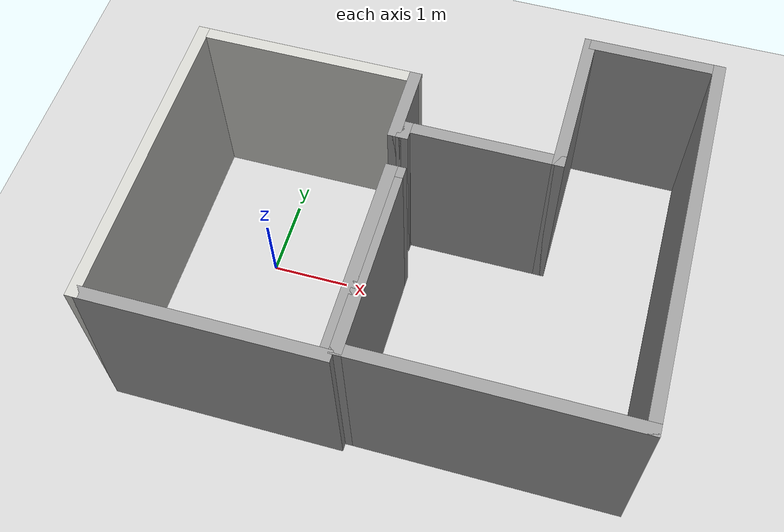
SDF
<sdf version="1.7">
 <world name="default">
  <light name="sun" type="directional">
   <pose>0 0 10 0 -0 0</pose>
   <diffuse>0.8 0.8 0.8 1</diffuse>
   <specular>0.2 0.2 0.2 1</specular>
   <attenuation>
    <range>1000</range>
    <constant>0.9</constant>
    <linear>0.01</linear>
    <quadratic>0.001</quadratic>
   </attenuation>
   <direction>-0.5 0.1 -0.9</direction>
   <spot><inner_angle>0</inner_angle><outer_angle>0</outer_angle><falloff>0</falloff></spot>
  </light>
  <model name="ground_plane">
   <static>1</static>
   <link name="link">
    <collision name="collision">
     <geometry><plane><normal>0 0 1</normal><size>100 100</size></plane></geometry>
     <surface>
      <contact><collide_bitmask>65535</collide_bitmask></contact>
      <friction><ode><mu>100</mu><mu2>50</mu2></ode></friction>
     </surface>
    </collision>
    <visual name="visual">
     <cast_shadows>0</cast_shadows>
     <geometry><plane><normal>0 0 1</normal><size>100 100</size></plane></geometry>
     <material>
      <script><uri>file://media/materials/scripts/gazebo.material</uri><name>Gazebo/Grey</name></script>
     </material>
    </visual>
   </link>
  </model>
  <gravity>0 0 -9.8</gravity>
  <magnetic_field>6e-06 2.3e-05 -4.2e-05</magnetic_field>
  <atmosphere type="adiabatic"/>
  <physics type="ode">
   <max_step_size>0.001</max_step_size>
   <real_time_factor>1</real_time_factor>
   <real_time_update_rate>1000</real_time_update_rate>
  </physics>
  <scene><ambient>0.4 0.4 0.4 1</ambient><background>0.7 0.7 0.7 1</background><shadows>1</shadows></scene>
  <spherical_coordinates>
   <surface_model>EARTH_WGS84</surface_model>
   <latitude_deg>0</latitude_deg>
   <longitude_deg>0</longitude_deg>
   <elevation>0</elevation>
   <heading_deg>0</heading_deg>
  </spherical_coordinates>
  <model name="myworld">
   <pose>1.87893 0.296176 0 0 -0 0</pose>
   <link name="Wall_21">
    <collision name="Wall_21_Collision">
     <geometry><box><size>2.75 0.15 2.5</size></box></geometry>
     <pose>0 0 1.25 0 -0 0</pose>
    </collision>
    <visual name="Wall_21_Visual">
     <pose>0 0 1.25 0 -0 0</pose>
     <geometry><box><size>2.75 0.15 2.5</size></box></geometry>
     <material>
      <script><uri>file://media/materials/scripts/gazebo.material</uri><name>Gazebo/CeilingTiled</name></script>
      <ambient>1 1 1 1</ambient>
     </material>
     <meta><layer>0</layer></meta>
    </visual>
    <pose>-1.70322 1.37477 0 0 -0 0</pose>
   </link>
   <link name="Wall_22">
    <collision name="Wall_22_Collision">
     <geometry><box><size>1 0.15 2.5</size></box></geometry>
     <pose>0 0 1.25 0 -0 0</pose>
    </collision>
    <visual name="Wall_22_Visual">
     <pose>0 0 1.25 0 -0 0</pose>
     <geometry><box><size>1 0.15 2.5</size></box></geometry>
     <material>
      <script><uri>file://media/materials/scripts/gazebo.material</uri><name>Gazebo/Grey</name></script>
      <ambient>1 1 1 1</ambient>
     </material>
     <meta><layer>0</layer></meta>
    </visual>
    <pose>-0.403224 0.94977 0 0 -0 -1.5708</pose>
   </link>
   <link name="Wall_23">
    <collision name="Wall_23_Collision">
     <geometry><box><size>0.25 0.15 2.5</size></box></geometry>
     <pose>0 0 1.25 0 -0 0</pose>
    </collision>
    <visual name="Wall_23_Visual">
     <pose>0 0 1.25 0 -0 0</pose>
     <geometry><box><size>0.25 0.15 2.5</size></box></geometry>
     <material>
      <script><uri>file://media/materials/scripts/gazebo.material</uri><name>Gazebo/Grey</name></script>
      <ambient>1 1 1 1</ambient>
     </material>
     <meta><layer>0</layer></meta>
    </visual>
    <pose>-0.353224 0.52477 0 0 -0 0</pose>
   </link>
   <link name="Wall_24">
    <collision name="Wall_24_Collision">
     <geometry><box><size>0.25 0.15 2.5</size></box></geometry>
     <pose>0 0 1.25 0 -0 0</pose>
    </collision>
    <visual name="Wall_24_Visual">
     <pose>0 0 1.25 0 -0 0</pose>
     <geometry><box><size>0.25 0.15 2.5</size></box></geometry>
     <material>
      <script><uri>file://media/materials/scripts/gazebo.material</uri><name>Gazebo/Grey</name></script>
      <ambient>1 1 1 1</ambient>
     </material>
     <meta><layer>0</layer></meta>
    </visual>
    <pose>-0.303224 0.57477 0 0 -0 1.5708</pose>
   </link>
   <link name="Wall_25">
    <collision name="Wall_25_Collision">
     <geometry><box><size>2 0.15 2.5</size></box></geometry>
     <pose>0 0 1.25 0 -0 0</pose>
    </collision>
    <visual name="Wall_25_Visual">
     <pose>0 0 1.25 0 -0 0</pose>
     <geometry><box><size>2 0.15 2.5</size></box></geometry>
     <material>
      <script><uri>file://media/materials/scripts/gazebo.material</uri><name>Gazebo/Grey</name></script>
      <ambient>1 1 1 1</ambient>
     </material>
     <meta><layer>0</layer></meta>
    </visual>
    <pose>0.621776 0.62477 0 0 -0 0</pose>
   </link>
   <link name="Wall_26">
    <collision name="Wall_26_Collision">
     <geometry><box><size>2 0.15 2.5</size></box></geometry>
     <pose>0 0 1.25 0 -0 0</pose>
    </collision>
    <visual name="Wall_26_Visual">
     <pose>0 0 1.25 0 -0 0</pose>
     <geometry><box><size>2 0.15 2.5</size></box></geometry>
     <material>
      <script><uri>file://media/materials/scripts/gazebo.material</uri><name>Gazebo/Grey</name></script>
      <ambient>1 1 1 1</ambient>
     </material>
     <meta><layer>0</layer></meta>
    </visual>
    <pose>1.54678 1.54977 0 0 -0 1.5708</pose>
   </link>
   <link name="Wall_27">
    <collision name="Wall_27_Collision">
     <geometry><box><size>1.75 0.15 2.5</size></box></geometry>
     <pose>0 0 1.25 0 -0 0</pose>
    </collision>
    <visual name="Wall_27_Visual">
     <pose>0 0 1.25 0 -0 0</pose>
     <geometry><box><size>1.75 0.15 2.5</size></box></geometry>
     <material>
      <script><uri>file://media/materials/scripts/gazebo.material</uri><name>Gazebo/Grey</name></script>
      <ambient>1 1 1 1</ambient>
     </material>
     <meta><layer>0</layer></meta>
    </visual>
    <pose>2.34678 2.47477 0 0 -0 0</pose>
   </link>
   <link name="Wall_30">
    <collision name="Wall_30_Collision">
     <geometry><box><size>5 0.15 2.5</size></box></geometry>
     <pose>0 0 1.25 0 -0 0</pose>
    </collision>
    <visual name="Wall_30_Visual">
     <pose>0 0 1.25 0 -0 0</pose>
     <geometry><box><size>5 0.15 2.5</size></box></geometry>
     <material>
      <script><uri>file://media/materials/scripts/gazebo.material</uri><name>Gazebo/Grey</name></script>
      <ambient>1 1 1 1</ambient>
     </material>
     <meta><layer>0</layer></meta>
    </visual>
    <pose>3.14678 0.04977 0 0 -0 -1.5708</pose>
   </link>
   <link name="Wall_31">
    <collision name="Wall_31_Collision">
     <geometry><box><size>3.5 0.15 2.5</size></box></geometry>
     <pose>0 0 1.25 0 -0 0</pose>
    </collision>
    <visual name="Wall_31_Visual">
     <pose>0 0 1.25 0 -0 0</pose>
     <geometry><box><size>3.5 0.15 2.5</size></box></geometry>
     <material>
      <script><uri>file://media/materials/scripts/gazebo.material</uri><name>Gazebo/Grey</name></script>
      <ambient>1 1 1 1</ambient>
     </material>
     <meta><layer>0</layer></meta>
    </visual>
    <pose>1.47178 -2.37523 0 0 -0 3.14159</pose>
   </link>
   <link name="Wall_32">
    <collision name="Wall_32_Collision">
     <geometry><box><size>2.5 0.15 2.5</size></box></geometry>
     <pose>0 0 1.25 0 -0 0</pose>
    </collision>
    <visual name="Wall_32_Visual">
     <pose>0 0 1.25 0 -0 0</pose>
     <geometry><box><size>2.5 0.15 2.5</size></box></geometry>
     <material>
      <script><uri>file://media/materials/scripts/gazebo.material</uri><name>Gazebo/Grey</name></script>
      <ambient>1 1 1 1</ambient>
     </material>
     <meta><layer>0</layer></meta>
    </visual>
    <pose>-0.203224 -1.20023 0 0 -0 1.5708</pose>
   </link>
   <link name="Wall_33">
    <collision name="Wall_33_Collision">
     <geometry><box><size>0.25 0.15 2.5</size></box></geometry>
     <pose>0 0 1.25 0 -0 0</pose>
    </collision>
    <visual name="Wall_33_Visual">
     <pose>0 0 1.25 0 -0 0</pose>
     <geometry><box><size>0.25 0.15 2.5</size></box></geometry>
     <material>
      <script><uri>file://media/materials/scripts/gazebo.material</uri><name>Gazebo/Grey</name></script>
      <ambient>1 1 1 1</ambient>
     </material>
     <meta><layer>0</layer></meta>
    </visual>
    <pose>-0.253224 -0.02523 0 0 -0 3.14159</pose>
   </link>
   <link name="Wall_34">
    <collision name="Wall_34_Collision">
     <geometry><box><size>2.5 0.15 2.5</size></box></geometry>
     <pose>0 0 1.25 0 -0 0</pose>
    </collision>
    <visual name="Wall_34_Visual">
     <pose>0 0 1.25 0 -0 0</pose>
     <geometry><box><size>2.5 0.15 2.5</size></box></geometry>
     <material>
      <script><uri>file://media/materials/scripts/gazebo.material</uri><name>Gazebo/Grey</name></script>
      <ambient>1 1 1 1</ambient>
     </material>
     <meta><layer>0</layer></meta>
    </visual>
    <pose>-0.303224 -1.20023 0 0 -0 -1.5708</pose>
   </link>
   <link name="Wall_36">
    <collision name="Wall_36_Collision">
     <geometry><box><size>4 0.15 2.5</size></box></geometry>
     <pose>0 0 1.25 0 -0 0</pose>
    </collision>
    <visual name="Wall_36_Visual">
     <pose>0 0 1.25 0 -0 0</pose>
     <geometry><box><size>4 0.15 2.5</size></box></geometry>
     <material>
      <script><uri>file://media/materials/scripts/gazebo.material</uri><name>Gazebo/CeilingTiled</name></script>
      <ambient>1 1 1 1</ambient>
     </material>
     <meta><layer>0</layer></meta>
    </visual>
    <pose>-3.14678 -0.54977 0 0 -0 1.5708</pose>
   </link>
   <link name="Wall_38">
    <collision name="Wall_38_Collision">
     <geometry><box><size>3 0.15 2.5</size></box></geometry>
     <pose>0 0 1.25 0 -0 0</pose>
    </collision>
    <visual name="Wall_38_Visual">
     <pose>0 0 1.25 0 -0 0</pose>
     <geometry><box><size>3 0.15 2.5</size></box></geometry>
     <material>
      <script><uri>file://media/materials/scripts/gazebo.material</uri><name>Gazebo/Grey</name></script>
      <ambient>1 1 1 1</ambient>
     </material>
     <meta><layer>0</layer></meta>
    </visual>
    <pose>-1.72178 -2.47477 0 0 -0 0</pose>
   </link>
   <static>1</static>
  </model>
  <model name="bookshelf">
   <static>1</static>
   <link name="link">
    <inertial><mass>1</mass></inertial>
    <collision name="back">
     <pose>0 0.005 0.6 0 -0 0</pose>
     <geometry><box><size>0.9 0.01 1.2</size></box></geometry>
    </collision>
    <visual name="visual1">
     <pose>0 0.005 0.6 0 -0 0</pose>
     <geometry><box><size>0.9 0.01 1.2</size></box></geometry>
     <material>
      <script><uri>file://media/materials/scripts/gazebo.material</uri><name>Gazebo/Wood</name></script>
     </material>
    </visual>
    <collision name="left_side">
     <pose>0.45 -0.195 0.6 0 -0 0</pose>
     <geometry><box><size>0.02 0.4 1.2</size></box></geometry>
    </collision>
    <visual name="visual2">
     <pose>0.45 -0.195 0.6 0 -0 0</pose>
     <geometry><box><size>0.02 0.4 1.2</size></box></geometry>
     <material>
      <script><uri>file://media/materials/scripts/gazebo.material</uri><name>Gazebo/Wood</name></script>
     </material>
    </visual>
    <collision name="right_side">
     <pose>-0.45 -0.195 0.6 0 -0 0</pose>
     <geometry><box><size>0.02 0.4 1.2</size></box></geometry>
    </collision>
    <visual name="visual3">
     <pose>-0.45 -0.195 0.6 0 -0 0</pose>
     <geometry><box><size>0.02 0.4 1.2</size></box></geometry>
     <material>
      <script><uri>file://media/materials/scripts/gazebo.material</uri><name>Gazebo/Wood</name></script>
     </material>
    </visual>
    <collision name="bottom">
     <pose>0 -0.195 0.03 0 -0 0</pose>
     <geometry><box><size>0.88 0.4 0.06</size></box></geometry>
    </collision>
    <visual name="visual4">
     <pose>0 -0.195 0.03 0 -0 0</pose>
     <geometry><box><size>0.88 0.4 0.06</size></box></geometry>
     <material>
      <script><uri>file://media/materials/scripts/gazebo.material</uri><name>Gazebo/Wood</name></script>
     </material>
    </visual>
    <collision name="top">
     <pose>0 -0.195 1.19 0 -0 0</pose>
     <geometry><box><size>0.88 0.4 0.02</size></box></geometry>
    </collision>
    <visual name="visual5">
     <pose>0 -0.195 1.19 0 -0 0</pose>
     <geometry><box><size>0.88 0.4 0.02</size></box></geometry>
     <material>
      <script><uri>file://media/materials/scripts/gazebo.material</uri><name>Gazebo/Wood</name></script>
     </material>
    </visual>
    <collision name="low_shelf">
     <pose>0 -0.195 0.43 0 -0 0</pose>
     <geometry><box><size>0.88 0.4 0.02</size></box></geometry>
    </collision>
    <visual name="visual6">
     <pose>0 -0.195 0.43 0 -0 0</pose>
     <geometry><box><size>0.88 0.4 0.02</size></box></geometry>
     <material>
      <script><uri>file://media/materials/scripts/gazebo.material</uri><name>Gazebo/Wood</name></script>
     </material>
    </visual>
    <collision name="high_shelf">
     <pose>0 -0.195 0.8 0 -0 0</pose>
     <geometry><box><size>0.88 0.4 0.02</size></box></geometry>
    </collision>
    <visual name="visual7">
     <pose>0 -0.195 0.8 0 -0 0</pose>
     <geometry><box><size>0.88 0.4 0.02</size></box></geometry>
     <material>
      <script><uri>file://media/materials/scripts/gazebo.material</uri><name>Gazebo/Wood</name></script>
     </material>
    </visual>
   </link>
   <pose>2.40586 -1.52618 0 0 -0 0</pose>
  </model>
  <model name="cabinet">
   <static>1</static>
   <link name="cabinet_bottom_plate">
    <inertial>
     <pose>0 0 -1 0 -0 0</pose>
     <inertia><ixx>2.05</ixx><ixy>0</ixy><ixz>0</ixz><iyy>2.05</iyy><iyz>0</iyz><izz>2.05</izz></inertia>
     <mass>25</mass>
    </inertial>
    <collision name="cabinet_bottom_plate_geom">
     <pose>0 0 0.01 0 -0 0</pose>
     <geometry><box><size>0.45 0.45 0.02</size></box></geometry>
    </collision>
    <visual name="cabinet_bottom_plate_geom_visual">
     <pose>0 0 0.01 0 -0 0</pose>
     <geometry><box><size>0.45 0.45 0.02</size></box></geometry>
     <material>
      <script><uri>file://media/materials/scripts/gazebo.material</uri><name>Gazebo/Wood</name></script>
     </material>
    </visual>
    <collision name="cabinet_bottom_plate_geom_cabinet_back_plate">
     <pose>0.235 0 0.51 0 -0 0</pose>
     <geometry><box><size>0.02 0.45 1.02</size></box></geometry>
    </collision>
    <visual name="cabinet_bottom_plate_geom_cabinet_back_plate_visual">
     <pose>0.235 0 0.51 0 -0 0</pose>
     <geometry><box><size>0.02 0.45 1.02</size></box></geometry>
     <material>
      <script><uri>file://media/materials/scripts/gazebo.material</uri><name>Gazebo/Wood</name></script>
     </material>
    </visual>
    <collision name="cabinet_bottom_plate_geom_cabinet_left_plate">
     <pose>0 0.235 0.51 0 -0 0</pose>
     <geometry><box><size>0.45 0.02 1.02</size></box></geometry>
    </collision>
    <visual name="cabinet_bottom_plate_geom_cabinet_left_plate_visual">
     <pose>0 0.235 0.51 0 -0 0</pose>
     <geometry><box><size>0.45 0.02 1.02</size></box></geometry>
     <material>
      <script><uri>file://media/materials/scripts/gazebo.material</uri><name>Gazebo/Wood</name></script>
     </material>
    </visual>
    <collision name="cabinet_bottom_plate_geom_cabinet_middle_plate">
     <pose>0 0 0.51 0 -0 0</pose>
     <geometry><box><size>0.45 0.45 0.02</size></box></geometry>
    </collision>
    <visual name="cabinet_bottom_plate_geom_cabinet_middle_plate_visual">
     <pose>0 0 0.51 0 -0 0</pose>
     <geometry><box><size>0.45 0.45 0.02</size></box></geometry>
     <material>
      <script><uri>file://media/materials/scripts/gazebo.material</uri><name>Gazebo/Wood</name></script>
     </material>
    </visual>
    <collision name="cabinet_bottom_plate_geom_cabinet_right_plate">
     <pose>0 -0.235 0.51 0 -0 0</pose>
     <geometry><box><size>0.45 0.02 1.02</size></box></geometry>
    </collision>
    <visual name="cabinet_bottom_plate_geom_cabinet_right_plate_visual">
     <pose>0 -0.235 0.51 0 -0 0</pose>
     <geometry><box><size>0.45 0.02 1.02</size></box></geometry>
     <material>
      <script><uri>file://media/materials/scripts/gazebo.material</uri><name>Gazebo/Wood</name></script>
     </material>
    </visual>
    <collision name="cabinet_bottom_plate_geom_cabinet_top_plate">
     <pose>0 0 1.01 0 -0 0</pose>
     <geometry><box><size>0.45 0.45 0.02</size></box></geometry>
    </collision>
    <visual name="cabinet_bottom_plate_geom_cabinet_top_plate_visual">
     <pose>0 0 1.01 0 -0 0</pose>
     <geometry><box><size>0.45 0.45 0.02</size></box></geometry>
     <material>
      <script><uri>file://media/materials/scripts/gazebo.material</uri><name>Gazebo/Wood</name></script>
     </material>
    </visual>
   </link>
   <pose>-0.130852 -1.78025 0 0 -0 0</pose>
  </model>
  <model name="cabinet_0">
   <static>1</static>
   <link name="cabinet_bottom_plate">
    <inertial>
     <pose>0 0 -1 0 -0 0</pose>
     <inertia><ixx>2.05</ixx><ixy>0</ixy><ixz>0</ixz><iyy>2.05</iyy><iyz>0</iyz><izz>2.05</izz></inertia>
     <mass>25</mass>
    </inertial>
    <collision name="cabinet_bottom_plate_geom">
     <pose>0 0 0.01 0 -0 0</pose>
     <geometry><box><size>0.45 0.45 0.02</size></box></geometry>
    </collision>
    <visual name="cabinet_bottom_plate_geom_visual">
     <pose>0 0 0.01 0 -0 0</pose>
     <geometry><box><size>0.45 0.45 0.02</size></box></geometry>
     <material>
      <script><uri>file://media/materials/scripts/gazebo.material</uri><name>Gazebo/Wood</name></script>
     </material>
    </visual>
    <collision name="cabinet_bottom_plate_geom_cabinet_back_plate">
     <pose>0.235 0 0.51 0 -0 0</pose>
     <geometry><box><size>0.02 0.45 1.02</size></box></geometry>
    </collision>
    <visual name="cabinet_bottom_plate_geom_cabinet_back_plate_visual">
     <pose>0.235 0 0.51 0 -0 0</pose>
     <geometry><box><size>0.02 0.45 1.02</size></box></geometry>
     <material>
      <script><uri>file://media/materials/scripts/gazebo.material</uri><name>Gazebo/Wood</name></script>
     </material>
    </visual>
    <collision name="cabinet_bottom_plate_geom_cabinet_left_plate">
     <pose>0 0.235 0.51 0 -0 0</pose>
     <geometry><box><size>0.45 0.02 1.02</size></box></geometry>
    </collision>
    <visual name="cabinet_bottom_plate_geom_cabinet_left_plate_visual">
     <pose>0 0.235 0.51 0 -0 0</pose>
     <geometry><box><size>0.45 0.02 1.02</size></box></geometry>
     <material>
      <script><uri>file://media/materials/scripts/gazebo.material</uri><name>Gazebo/Wood</name></script>
     </material>
    </visual>
    <collision name="cabinet_bottom_plate_geom_cabinet_middle_plate">
     <pose>0 0 0.51 0 -0 0</pose>
     <geometry><box><size>0.45 0.45 0.02</size></box></geometry>
    </collision>
    <visual name="cabinet_bottom_plate_geom_cabinet_middle_plate_visual">
     <pose>0 0 0.51 0 -0 0</pose>
     <geometry><box><size>0.45 0.45 0.02</size></box></geometry>
     <material>
      <script><uri>file://media/materials/scripts/gazebo.material</uri><name>Gazebo/Wood</name></script>
     </material>
    </visual>
    <collision name="cabinet_bottom_plate_geom_cabinet_right_plate">
     <pose>0 -0.235 0.51 0 -0 0</pose>
     <geometry><box><size>0.45 0.02 1.02</size></box></geometry>
    </collision>
    <visual name="cabinet_bottom_plate_geom_cabinet_right_plate_visual">
     <pose>0 -0.235 0.51 0 -0 0</pose>
     <geometry><box><size>0.45 0.02 1.02</size></box></geometry>
     <material>
      <script><uri>file://media/materials/scripts/gazebo.material</uri><name>Gazebo/Wood</name></script>
     </material>
    </visual>
    <collision name="cabinet_bottom_plate_geom_cabinet_top_plate">
     <pose>0 0 1.01 0 -0 0</pose>
     <geometry><box><size>0.45 0.45 0.02</size></box></geometry>
    </collision>
    <visual name="cabinet_bottom_plate_geom_cabinet_top_plate_visual">
     <pose>0 0 1.01 0 -0 0</pose>
     <geometry><box><size>0.45 0.45 0.02</size></box></geometry>
     <material>
      <script><uri>file://media/materials/scripts/gazebo.material</uri><name>Gazebo/Wood</name></script>
     </material>
    </visual>
   </link>
   <pose>0.527784 -1.74934 0 0 -0 0</pose>
  </model>
 </world>
</sdf>
